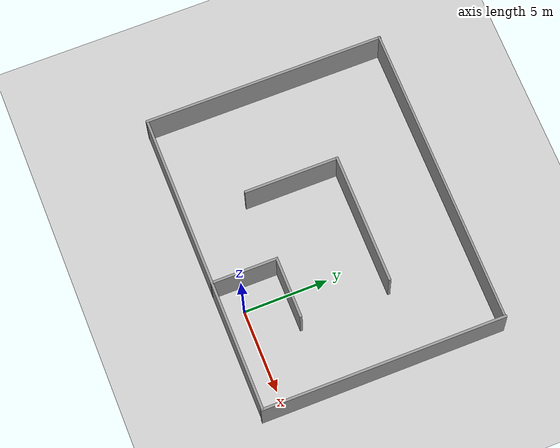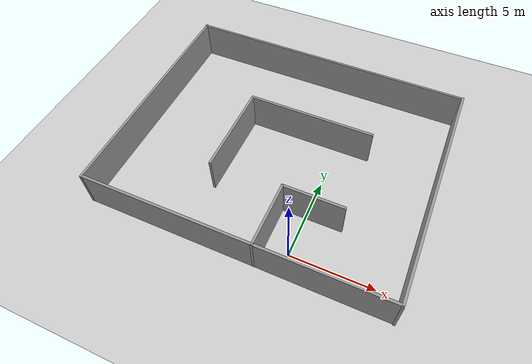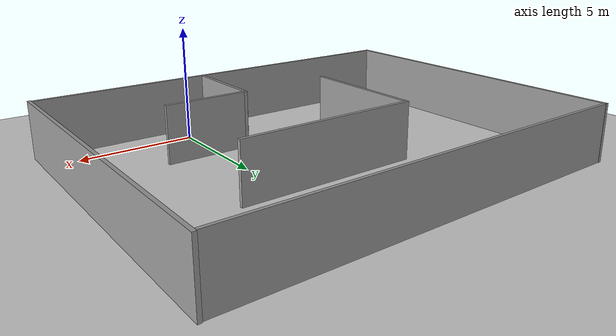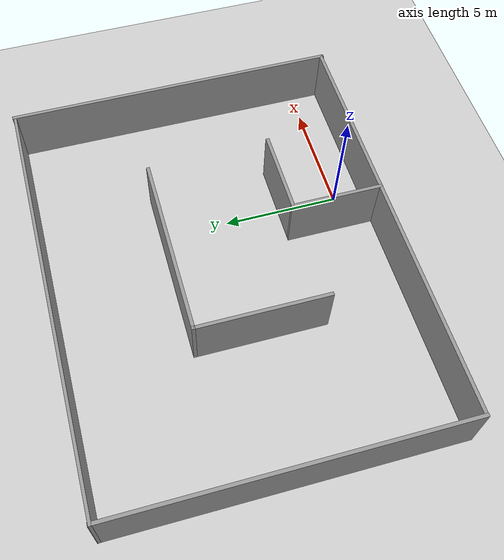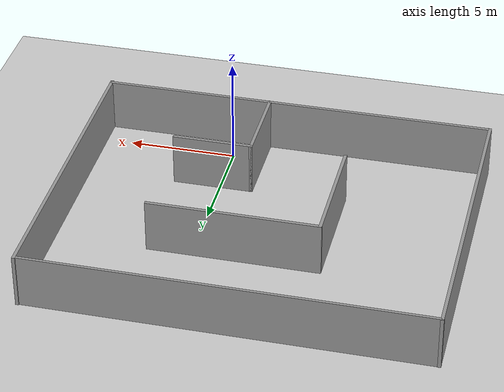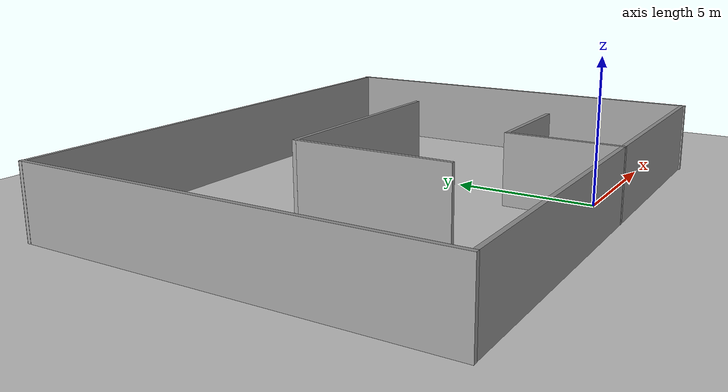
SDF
<sdf version="1.7">
 <world name="default">
  <light name="sun" type="directional">
   <pose>0 0 10 0 -0 0</pose>
   <diffuse>0.8 0.8 0.8 1</diffuse>
   <specular>0.2 0.2 0.2 1</specular>
   <attenuation>
    <range>1000</range>
    <constant>0.9</constant>
    <linear>0.01</linear>
    <quadratic>0.001</quadratic>
   </attenuation>
   <direction>-0.5 0.1 -0.9</direction>
   <spot><inner_angle>0</inner_angle><outer_angle>0</outer_angle><falloff>0</falloff></spot>
  </light>
  <model name="ground_plane">
   <static>1</static>
   <link name="link">
    <collision name="collision">
     <geometry><plane><normal>0 0 1</normal><size>100 100</size></plane></geometry>
     <surface><friction><ode><mu>100</mu><mu2>50</mu2></ode></friction></surface>
    </collision>
    <visual name="visual">
     <cast_shadows>0</cast_shadows>
     <geometry><plane><normal>0 0 1</normal><size>100 100</size></plane></geometry>
     <material>
      <script><uri>file://media/materials/scripts/gazebo.material</uri><name>Gazebo/Grey</name></script>
     </material>
    </visual>
   </link>
  </model>
  <gravity>0 0 -9.8</gravity>
  <magnetic_field>6e-06 2.3e-05 -4.2e-05</magnetic_field>
  <atmosphere type="adiabatic"/>
  <physics type="ode">
   <max_step_size>0.001</max_step_size>
   <real_time_factor>1</real_time_factor>
   <real_time_update_rate>1000</real_time_update_rate>
  </physics>
  <scene><ambient>0.4 0.4 0.4 1</ambient><background>0.7 0.7 0.7 1</background><shadows>1</shadows></scene>
  <audio><device>default</device></audio>
  <spherical_coordinates>
   <surface_model>EARTH_WGS84</surface_model>
   <latitude_deg>0</latitude_deg>
   <longitude_deg>0</longitude_deg>
   <elevation>0</elevation>
   <heading_deg>0</heading_deg>
  </spherical_coordinates>
  <model name="demo_race_track2">
   <link name="Wall_10">
    <pose>0.522756 -0.328861 0 0 -0 0</pose>
    <visual name="Wall_10_Visual">
     <pose>0 0 1.25 0 -0 0</pose>
     <geometry><box><size>3.75 0.15 2.5</size></box></geometry>
     <material>
      <script><uri>file://media/materials/scripts/gazebo.material</uri><name>Gazebo/Grey</name></script>
      <ambient>1 1 1 1</ambient>
      <shader type="pixel"/>
     </material>
     <meta><layer>0</layer></meta>
    </visual>
    <collision name="Wall_10_Collision">
     <pose>0 0 1.25 0 -0 0</pose>
     <geometry><box><size>3.75 0.15 2.5</size></box></geometry>
     <surface>
      <friction>
       <ode><mu>1</mu><mu2>1</mu2><fdir1>0 0 0</fdir1><slip1>0</slip1><slip2>0</slip2></ode>
       <torsional>
        <coefficient>1</coefficient>
        <patch_radius>0</patch_radius>
        <surface_radius>0</surface_radius>
        <use_patch_radius>1</use_patch_radius>
        <ode><slip>0</slip></ode>
       </torsional>
      </friction>
      <bounce><restitution_coefficient>0</restitution_coefficient><threshold>1e+06</threshold></bounce>
      <contact>
       <collide_without_contact>0</collide_without_contact>
       <collide_without_contact_bitmask>1</collide_without_contact_bitmask>
       <collide_bitmask>1</collide_bitmask>
       <ode>
        <soft_cfm>0</soft_cfm>
        <soft_erp>0.2</soft_erp>
        <kp>1e+13</kp>
        <kd>1</kd>
        <max_vel>0.01</max_vel>
        <min_depth>0</min_depth>
       </ode>
       <bullet>
        <split_impulse>1</split_impulse>
        <split_impulse_penetration_threshold>-0.01</split_impulse_penetration_threshold>
        <soft_cfm>0</soft_cfm>
        <soft_erp>0.2</soft_erp>
        <kp>1e+13</kp>
        <kd>1</kd>
       </bullet>
      </contact>
     </surface>
    </collision>
   </link>
   <link name="Wall_14">
    <pose>-5.62865 2.25752 0 0 -0 1.5708</pose>
    <inertial>
     <inertia><ixx>0</ixx><ixy>0</ixy><ixz>0</ixz><iyy>0</iyy><iyz>0</iyz><izz>0</izz></inertia>
     <mass>0</mass>
    </inertial>
    <visual name="Wall_14_Visual">
     <pose>0 0 1.25 0 -0 0</pose>
     <geometry><box><size>5.68084 0.15 2.5</size></box></geometry>
     <material>
      <script><uri>file://media/materials/scripts/gazebo.material</uri><name>Gazebo/Grey</name></script>
      <ambient>1 1 1 1</ambient>
      <shader type="pixel"/>
     </material>
     <meta><layer>0</layer></meta>
    </visual>
    <collision name="Wall_14_Collision">
     <pose>0 0 1.25 0 -0 0</pose>
     <geometry><box><size>5.68084 0.15 2.5</size></box></geometry>
     <surface>
      <friction>
       <ode><mu>1</mu><mu2>1</mu2><fdir1>0 0 0</fdir1><slip1>0</slip1><slip2>0</slip2></ode>
       <torsional>
        <coefficient>1</coefficient>
        <patch_radius>0</patch_radius>
        <surface_radius>0</surface_radius>
        <use_patch_radius>1</use_patch_radius>
        <ode><slip>0</slip></ode>
       </torsional>
      </friction>
      <bounce><restitution_coefficient>0</restitution_coefficient><threshold>1e+06</threshold></bounce>
      <contact>
       <collide_without_contact>0</collide_without_contact>
       <collide_without_contact_bitmask>1</collide_without_contact_bitmask>
       <collide_bitmask>1</collide_bitmask>
       <ode>
        <soft_cfm>0</soft_cfm>
        <soft_erp>0.2</soft_erp>
        <kp>1e+13</kp>
        <kd>1</kd>
        <max_vel>0.01</max_vel>
        <min_depth>0</min_depth>
       </ode>
       <bullet>
        <split_impulse>1</split_impulse>
        <split_impulse_penetration_threshold>-0.01</split_impulse_penetration_threshold>
        <soft_cfm>0</soft_cfm>
        <soft_erp>0.2</soft_erp>
        <kp>1e+13</kp>
        <kd>1</kd>
       </bullet>
      </contact>
     </surface>
    </collision>
   </link>
   <link name="Wall_15">
    <pose>-1.74057 5.02435 0 0 -0 0</pose>
    <inertial>
     <inertia><ixx>0</ixx><ixy>0</ixy><ixz>0</ixz><iyy>0</iyy><iyz>0</iyz><izz>0</izz></inertia>
     <mass>0</mass>
    </inertial>
    <visual name="Wall_15_Visual">
     <pose>0 0 1.25 0 -0 0</pose>
     <geometry><box><size>7.92685 0.15 2.5</size></box></geometry>
     <material>
      <script><uri>file://media/materials/scripts/gazebo.material</uri><name>Gazebo/Grey</name></script>
      <ambient>1 1 1 1</ambient>
      <shader type="pixel"/>
     </material>
     <meta><layer>0</layer></meta>
    </visual>
    <collision name="Wall_15_Collision">
     <pose>0 0 1.25 0 -0 0</pose>
     <geometry><box><size>7.92685 0.15 2.5</size></box></geometry>
     <surface>
      <friction>
       <ode><mu>1</mu><mu2>1</mu2><fdir1>0 0 0</fdir1><slip1>0</slip1><slip2>0</slip2></ode>
       <torsional>
        <coefficient>1</coefficient>
        <patch_radius>0</patch_radius>
        <surface_radius>0</surface_radius>
        <use_patch_radius>1</use_patch_radius>
        <ode><slip>0</slip></ode>
       </torsional>
      </friction>
      <bounce><restitution_coefficient>0</restitution_coefficient><threshold>1e+06</threshold></bounce>
      <contact>
       <collide_without_contact>0</collide_without_contact>
       <collide_without_contact_bitmask>1</collide_without_contact_bitmask>
       <collide_bitmask>1</collide_bitmask>
       <ode>
        <soft_cfm>0</soft_cfm>
        <soft_erp>0.2</soft_erp>
        <kp>1e+13</kp>
        <kd>1</kd>
        <max_vel>0.01</max_vel>
        <min_depth>0</min_depth>
       </ode>
       <bullet>
        <split_impulse>1</split_impulse>
        <split_impulse_penetration_threshold>-0.01</split_impulse_penetration_threshold>
        <soft_cfm>0</soft_cfm>
        <soft_erp>0.2</soft_erp>
        <kp>1e+13</kp>
        <kd>1</kd>
       </bullet>
      </contact>
     </surface>
    </collision>
   </link>
   <link name="Wall_4">
    <pose>6.49769 2.94937 0 0 -0 1.5708</pose>
    <inertial>
     <inertia><ixx>0</ixx><ixy>0</ixy><ixz>0</ixz><iyy>0</iyy><iyz>0</iyz><izz>0</izz></inertia>
     <mass>0</mass>
    </inertial>
    <visual name="Wall_4_Visual">
     <pose>0 0 1.25 0 -0 0</pose>
     <geometry><box><size>14.485 0.15 2.5</size></box></geometry>
     <material>
      <script><uri>file://media/materials/scripts/gazebo.material</uri><name>Gazebo/Grey</name></script>
      <ambient>1 1 1 1</ambient>
      <shader type="pixel"/>
     </material>
     <meta><layer>0</layer></meta>
    </visual>
    <collision name="Wall_4_Collision">
     <pose>0 0 1.25 0 -0 0</pose>
     <geometry><box><size>14.485 0.15 2.5</size></box></geometry>
     <surface>
      <friction>
       <ode><mu>1</mu><mu2>1</mu2><fdir1>0 0 0</fdir1><slip1>0</slip1><slip2>0</slip2></ode>
       <torsional>
        <coefficient>1</coefficient>
        <patch_radius>0</patch_radius>
        <surface_radius>0</surface_radius>
        <use_patch_radius>1</use_patch_radius>
        <ode><slip>0</slip></ode>
       </torsional>
      </friction>
      <bounce><restitution_coefficient>0</restitution_coefficient><threshold>1e+06</threshold></bounce>
      <contact>
       <collide_without_contact>0</collide_without_contact>
       <collide_without_contact_bitmask>1</collide_without_contact_bitmask>
       <collide_bitmask>1</collide_bitmask>
       <ode>
        <soft_cfm>0</soft_cfm>
        <soft_erp>0.2</soft_erp>
        <kp>1e+13</kp>
        <kd>1</kd>
        <max_vel>0.01</max_vel>
        <min_depth>0</min_depth>
       </ode>
       <bullet>
        <split_impulse>1</split_impulse>
        <split_impulse_penetration_threshold>-0.01</split_impulse_penetration_threshold>
        <soft_cfm>0</soft_cfm>
        <soft_erp>0.2</soft_erp>
        <kp>1e+13</kp>
        <kd>1</kd>
       </bullet>
      </contact>
     </surface>
    </collision>
   </link>
   <link name="Wall_5">
    <pose>-2.68974 10.0886 0 0 -0 3.14159</pose>
    <inertial>
     <inertia><ixx>0</ixx><ixy>0</ixy><ixz>0</ixz><iyy>0</iyy><iyz>0</iyz><izz>0</izz></inertia>
     <mass>0</mass>
    </inertial>
    <visual name="Wall_5_Visual">
     <pose>0 0 1.25 0 -0 0</pose>
     <geometry><box><size>18.2163 0.127451 2.5</size></box></geometry>
     <material>
      <script><uri>file://media/materials/scripts/gazebo.material</uri><name>Gazebo/Grey</name></script>
      <ambient>1 1 1 1</ambient>
      <shader type="pixel"/>
     </material>
     <meta><layer>0</layer></meta>
    </visual>
    <collision name="Wall_5_Collision">
     <pose>0 0 1.25 0 -0 0</pose>
     <geometry><box><size>18.2163 0.127451 2.5</size></box></geometry>
     <surface>
      <friction>
       <ode><mu>1</mu><mu2>1</mu2><fdir1>0 0 0</fdir1><slip1>0</slip1><slip2>0</slip2></ode>
       <torsional>
        <coefficient>1</coefficient>
        <patch_radius>0</patch_radius>
        <surface_radius>0</surface_radius>
        <use_patch_radius>1</use_patch_radius>
        <ode><slip>0</slip></ode>
       </torsional>
      </friction>
      <bounce><restitution_coefficient>0</restitution_coefficient><threshold>1e+06</threshold></bounce>
      <contact>
       <collide_without_contact>0</collide_without_contact>
       <collide_without_contact_bitmask>1</collide_without_contact_bitmask>
       <collide_bitmask>1</collide_bitmask>
       <ode>
        <soft_cfm>0</soft_cfm>
        <soft_erp>0.2</soft_erp>
        <kp>1e+13</kp>
        <kd>1</kd>
        <max_vel>0.01</max_vel>
        <min_depth>0</min_depth>
       </ode>
       <bullet>
        <split_impulse>1</split_impulse>
        <split_impulse_penetration_threshold>-0.01</split_impulse_penetration_threshold>
        <soft_cfm>0</soft_cfm>
        <soft_erp>0.2</soft_erp>
        <kp>1e+13</kp>
        <kd>1</kd>
       </bullet>
      </contact>
     </surface>
    </collision>
   </link>
   <link name="Wall_6">
    <pose>-11.7177 2.95873 0 0 0 -1.5708</pose>
    <inertial>
     <inertia><ixx>0</ixx><ixy>0</ixy><ixz>0</ixz><iyy>0</iyy><iyz>0</iyz><izz>0</izz></inertia>
     <mass>0</mass>
    </inertial>
    <visual name="Wall_6_Visual">
     <pose>0 0 1.25 0 -0 0</pose>
     <geometry><box><size>14.4251 0.15 2.5</size></box></geometry>
     <material>
      <script><uri>file://media/materials/scripts/gazebo.material</uri><name>Gazebo/Grey</name></script>
      <ambient>1 1 1 1</ambient>
      <shader type="pixel"/>
     </material>
     <meta><layer>0</layer></meta>
    </visual>
    <collision name="Wall_6_Collision">
     <pose>0 0 1.25 0 -0 0</pose>
     <geometry><box><size>14.4251 0.15 2.5</size></box></geometry>
     <surface>
      <friction>
       <ode><mu>1</mu><mu2>1</mu2><fdir1>0 0 0</fdir1><slip1>0</slip1><slip2>0</slip2></ode>
       <torsional>
        <coefficient>1</coefficient>
        <patch_radius>0</patch_radius>
        <surface_radius>0</surface_radius>
        <use_patch_radius>1</use_patch_radius>
        <ode><slip>0</slip></ode>
       </torsional>
      </friction>
      <bounce><restitution_coefficient>0</restitution_coefficient><threshold>1e+06</threshold></bounce>
      <contact>
       <collide_without_contact>0</collide_without_contact>
       <collide_without_contact_bitmask>1</collide_without_contact_bitmask>
       <collide_bitmask>1</collide_bitmask>
       <ode>
        <soft_cfm>0</soft_cfm>
        <soft_erp>0.2</soft_erp>
        <kp>1e+13</kp>
        <kd>1</kd>
        <max_vel>0.01</max_vel>
        <min_depth>0</min_depth>
       </ode>
       <bullet>
        <split_impulse>1</split_impulse>
        <split_impulse_penetration_threshold>-0.01</split_impulse_penetration_threshold>
        <soft_cfm>0</soft_cfm>
        <soft_erp>0.2</soft_erp>
        <kp>1e+13</kp>
        <kd>1</kd>
       </bullet>
      </contact>
     </surface>
    </collision>
   </link>
   <link name="Wall_7">
    <pose>-2.55902 -4.17114 0 0 -0 0</pose>
    <inertial>
     <inertia><ixx>0</ixx><ixy>0</ixy><ixz>0</ixz><iyy>0</iyy><iyz>0</iyz><izz>0</izz></inertia>
     <mass>0</mass>
    </inertial>
    <visual name="Wall_7_Visual">
     <pose>0 0 1.25 0 -0 0</pose>
     <geometry><box><size>18.1844 0.15 2.5</size></box></geometry>
     <material>
      <script><uri>file://media/materials/scripts/gazebo.material</uri><name>Gazebo/Grey</name></script>
      <ambient>1 1 1 1</ambient>
      <shader type="pixel"/>
     </material>
     <meta><layer>0</layer></meta>
    </visual>
    <collision name="Wall_7_Collision">
     <pose>0 0 1.25 0 -0 0</pose>
     <geometry><box><size>18.1844 0.15 2.5</size></box></geometry>
     <surface>
      <friction>
       <ode><mu>1</mu><mu2>1</mu2><fdir1>0 0 0</fdir1><slip1>0</slip1><slip2>0</slip2></ode>
       <torsional>
        <coefficient>1</coefficient>
        <patch_radius>0</patch_radius>
        <surface_radius>0</surface_radius>
        <use_patch_radius>1</use_patch_radius>
        <ode><slip>0</slip></ode>
       </torsional>
      </friction>
      <bounce><restitution_coefficient>0</restitution_coefficient><threshold>1e+06</threshold></bounce>
      <contact>
       <collide_without_contact>0</collide_without_contact>
       <collide_without_contact_bitmask>1</collide_without_contact_bitmask>
       <collide_bitmask>1</collide_bitmask>
       <ode>
        <soft_cfm>0</soft_cfm>
        <soft_erp>0.2</soft_erp>
        <kp>1e+13</kp>
        <kd>1</kd>
        <max_vel>0.01</max_vel>
        <min_depth>0</min_depth>
       </ode>
       <bullet>
        <split_impulse>1</split_impulse>
        <split_impulse_penetration_threshold>-0.01</split_impulse_penetration_threshold>
        <soft_cfm>0</soft_cfm>
        <soft_erp>0.2</soft_erp>
        <kp>1e+13</kp>
        <kd>1</kd>
       </bullet>
      </contact>
     </surface>
    </collision>
   </link>
   <link name="Wall_9">
    <pose>-1.27724 -2.25386 0 0 -0 1.5708</pose>
    <visual name="Wall_9_Visual">
     <pose>0 0 1.25 0 -0 0</pose>
     <geometry><box><size>4 0.15 2.5</size></box></geometry>
     <material>
      <script><uri>file://media/materials/scripts/gazebo.material</uri><name>Gazebo/Grey</name></script>
      <ambient>1 1 1 1</ambient>
      <shader type="pixel"/>
     </material>
     <meta><layer>0</layer></meta>
    </visual>
    <collision name="Wall_9_Collision">
     <pose>0 0 1.25 0 -0 0</pose>
     <geometry><box><size>4 0.15 2.5</size></box></geometry>
     <surface>
      <friction>
       <ode><mu>1</mu><mu2>1</mu2><fdir1>0 0 0</fdir1><slip1>0</slip1><slip2>0</slip2></ode>
       <torsional>
        <coefficient>1</coefficient>
        <patch_radius>0</patch_radius>
        <surface_radius>0</surface_radius>
        <use_patch_radius>1</use_patch_radius>
        <ode><slip>0</slip></ode>
       </torsional>
      </friction>
      <bounce><restitution_coefficient>0</restitution_coefficient><threshold>1e+06</threshold></bounce>
      <contact>
       <collide_without_contact>0</collide_without_contact>
       <collide_without_contact_bitmask>1</collide_without_contact_bitmask>
       <collide_bitmask>1</collide_bitmask>
       <ode>
        <soft_cfm>0</soft_cfm>
        <soft_erp>0.2</soft_erp>
        <kp>1e+13</kp>
        <kd>1</kd>
        <max_vel>0.01</max_vel>
        <min_depth>0</min_depth>
       </ode>
       <bullet>
        <split_impulse>1</split_impulse>
        <split_impulse_penetration_threshold>-0.01</split_impulse_penetration_threshold>
        <soft_cfm>0</soft_cfm>
        <soft_erp>0.2</soft_erp>
        <kp>1e+13</kp>
        <kd>1</kd>
       </bullet>
      </contact>
     </surface>
    </collision>
   </link>
   <static>1</static>
   <pose>-0.19 2.90114 0 0 -0 0</pose>
  </model>
 </world>
</sdf>
